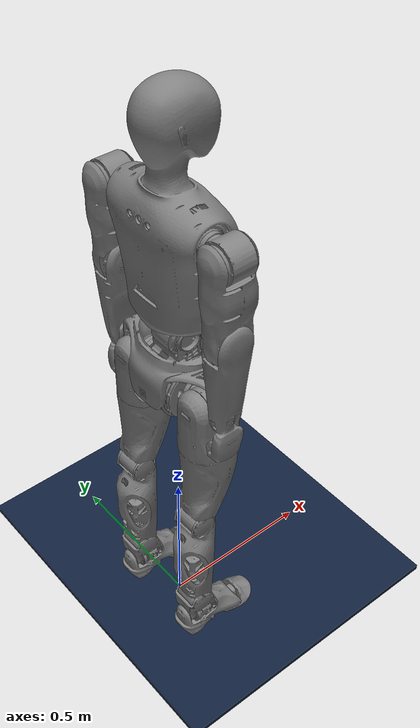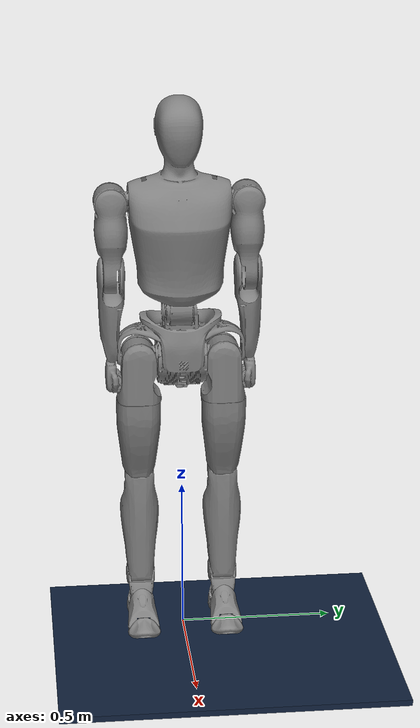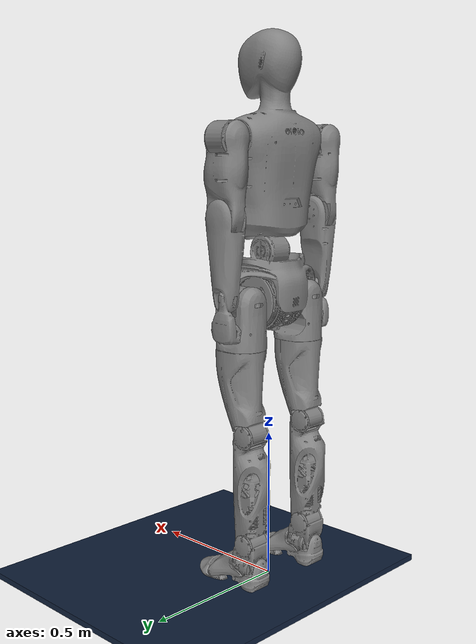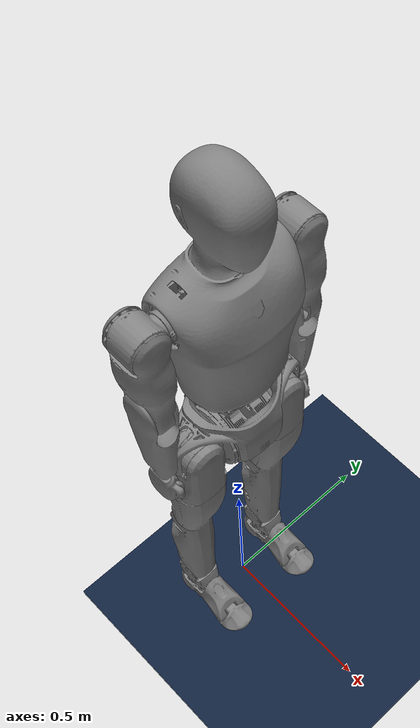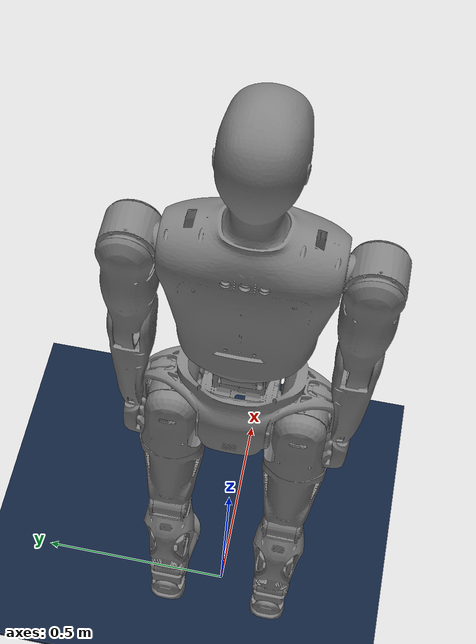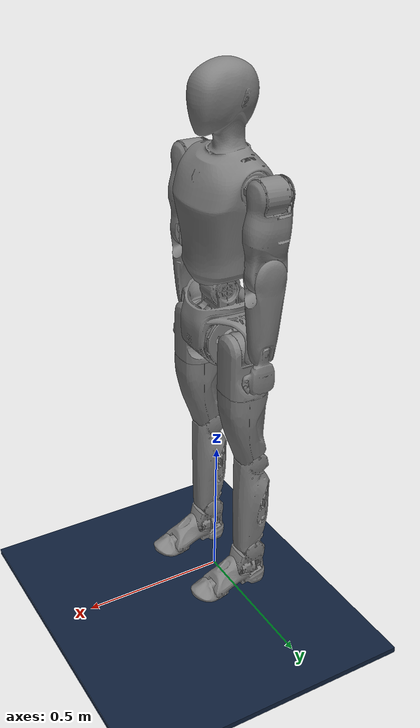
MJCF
<!-- Description:
sp xml: 脚部含有弹簧，且碰撞体分为两段：前后两个脚掌
-->
<mujoco model="InRealV2">
  <compiler angle="radian" meshdir="../mesh/"/>

  <asset>
    <mesh name="R" content_type="model/stl" file="R.stl"/>
    <mesh name="L1" content_type="model/stl" file="L1.stl"/>
    <mesh name="L11" content_type="model/stl" file="L1.stl" scale="1 -1 1"/>
    <mesh name="L2" content_type="model/stl" file="L2.stl"/>
    <mesh name="L21" content_type="model/stl" file="L2.stl" scale="1 -1 1"/>
    <mesh name="L3" content_type="model/stl" file="L3.stl"/>
    <mesh name="L31" content_type="model/stl" file="L3.stl" scale="1 -1 1"/>
    <mesh name="L4" content_type="model/stl" file="L4.stl"/>
    <mesh name="L41" content_type="model/stl" file="L4.stl" scale="1 -1 1"/>
    <mesh name="L5" content_type="model/stl" file="L5.stl"/>
    <mesh name="L51" content_type="model/stl" file="L5.stl" scale="1 -1 1"/>
    <mesh name="L6" content_type="model/stl" file="L6.stl"/>
    <mesh name="L7" content_type="model/stl" file="L7.stl"/>
    <mesh name="L61" content_type="model/stl" file="L6.stl" scale="1 -1 1"/>
    <mesh name="L71" content_type="model/stl" file="L7.stl" scale="1 -1 1"/>
    <mesh name="W" content_type="model/stl" file="W.stl"/>
    <mesh name="C" content_type="model/stl" file="C.stl"/>
    <mesh name="A1" content_type="model/stl" file="A1.stl"/>
    <mesh name="A11" content_type="model/stl" file="A1.stl" scale="1 -1 1"/>
    <mesh name="A2" content_type="model/stl" file="A2.stl"/>
    <mesh name="A21" content_type="model/stl" file="A2.stl" scale="1 -1 1"/>
    <mesh name="A3" content_type="model/stl" file="A3.stl"/>
    <mesh name="A31" content_type="model/stl" file="A3.stl" scale="1 -1 1"/>
  </asset>

  <!-- setup scene -->
  <statistic center="0 0 1.0" extent="1.0"/>
  <visual>
    <headlight diffuse="0.6 0.6 0.6" ambient="0.4 0.4 0.4" specular="0.1 0.1 0.1"/>
    <rgba haze="0.06 0.1 0.16 1"/>
    <global offwidth="2080" offheight="1170"/>
  </visual>
  <asset>
    <texture type="skybox" builtin="gradient"
      rgb1="0.18 0.28 0.40" rgb2="0.02 0.04 0.10"
      width="512" height="512"/>
    <texture type="2d" name="groundplane" builtin="checker" mark="edge"
      rgb1="0.09 0.19 0.31" rgb2="0.03 0.06 0.15"
      markrgb="0.45 0.65 0.90" width="512" height="512"/>
    <material name="groundplane" texture="groundplane" texuniform="true"
      texrepeat="5 5" reflectance="0.25"/>
  </asset>

  <worldbody>
    <geom name="floor" size="100 100 0.01" type="box" material="groundplane" contype="1" conaffinity="1" priority="1"
      friction="1.0 0.001 0.001" condim="3" solimp="0.9 0.95 0.01" solref="0.02 0.9"/>
    <light name="main" directional="true" diffuse="0.6 0.6 0.6" specular="0.1 0.1 0.1"
      pos="0 0 10" dir="0.2 0.3 -1" castshadow="true"/>
    <light name="fill" directional="true" diffuse="0.25 0.25 0.3" specular="0.0 0.0 0.0"
      pos="0 0 5" dir="-0.2 -0.3 -1" castshadow="false"/>
    <body name="pelvis" pos="0 0 1.12">
      <!-- pelvis ← entity1.r: mass 10.983→11.555, CoM z -0.146→-0.145 -->
      <inertial pos="0 0 -0.145" mass="11.555" fullinertia="0.083 0.0726 0.071 0 0.000249 0"/>
      <joint name="floating_base_joint" type="free"/>
      <geom type="mesh" contype="0" conaffinity="0" group="1" density="0" mesh="R"/>
      <geom size="0.05 0.175 0.05" pos="0 0 -0.035" type="box" group="3"/>

      <!-- left leg -->
      <!-- hip_pitch_link ← entity1.l1: body y 0.1407→0.14, mass 2.425→2.432 -->
      <body name="left_hip_pitch_link" pos="0 0.14 -0.159">
        <inertial pos="0 0 0" mass="2.432" fullinertia="0.0039 0.0029 0.0032 0 0 0"/>
        <joint name="left_hip_pitch_joint" pos="0 0 0" axis="0 1 0" range="-1.57 1.57" damping="0.05" frictionloss="5" solreffriction="0.0001 2" actuatorfrcrange="-587 587"/>
        <geom type="mesh" contype="0" conaffinity="0" group="1" density="0" mesh="L1"/>
        <geom size="0.055 0.035" quat="0.707035 0 0.707179 0" type="cylinder" group="3"/>
        <!-- hip_roll_link ← entity1.l2: mass 3.246→3.348, CoM pos updated -->
        <body name="left_hip_roll_link" pos="-0.01 0 0">
          <inertial pos="0.0014 0 -0.135" mass="3.348" fullinertia="0.0123 0.0136 0.00678 0 -0.000658 0"/>
          <joint name="left_hip_roll_joint" pos="0 0 0" axis="1 0 0" range="-0.35 1.57" damping="0.05" actuatorfrcrange="-336 336"/>
          <geom type="mesh" contype="0" conaffinity="0" group="1" density="0" mesh="L2"/>
          <geom size="0.05 0.04" pos="0 0 -0.1" type="cylinder" group="3"/>
          <!-- hip_yaw_link ← entity1.l3: body z -0.2051→-0.20534, mass unchanged, inertia updated -->
          <body name="left_hip_yaw_link" pos="0 0 -0.20534">
            <inertial pos="-0.018 -0.001 -0.126" mass="4.39" fullinertia="0.022 0.0227 0.0069 -0.000147 -0.003543 -0.000577"/>
            <joint name="left_hip_yaw_joint" pos="0 0 0" axis="0 0 1" range="-0.785 0.785" damping="0.05" actuatorfrcrange="-336 336"/>
            <geom type="mesh" contype="0" conaffinity="0" group="1" density="0" mesh="L3"/>
            <geom size="0.07 0.075" pos="0 0 -0.05" type="cylinder" group="3"/>
            <!-- knee_link ← entity1.l4: body z -0.2226→-0.2227, mass 4.497→4.765, range -0.26~2.2→0~2.44 -->
            <body name="left_knee_link" pos="-0.043 0 -0.2227">
              <inertial pos="0.002 -0.001 -0.247" mass="4.765" fullinertia="0.04785 0.0477 0.00586 -0.00001 -0.00144 -0.00095"/>
              <joint name="left_knee_joint" pos="0 0 0" axis="0 1 0" range="0 2.44" damping="0.05" frictionloss="30" solreffriction="0.0001 2" actuatorfrcrange="-338 338"/>
              <geom type="mesh" contype="0" conaffinity="0" group="1" density="0" mesh="L4"/>
              <geom size="0.05 0.125" pos="0 0 -0.15" type="cylinder" group="3"/>
              <!-- ankle_pitch_link ← entity1.l5: mass 0.954→1.108, range -0.6~0.75→-0.55~0.73 -->
              <body name="left_ankle_pitch_link" pos="0 0 -0.37">
                <inertial pos="0.011 0.0019 -0.0567" mass="1.108" fullinertia="0.00206 0.0023 0.0016 0.000024 0.000276 -0.000112"/>
                <joint name="left_ankle_pitch_joint" pos="0 0 0" axis="0 1 0" range="-0.55 0.73" damping="0.05" frictionloss="30" solreffriction="0.0001 2" actuatorfrcrange="-338 338"/>
                <geom type="mesh" contype="0" conaffinity="0" group="1" density="0" mesh="L5"/>
                <geom size="0.05 0.05" quat="0.707035 0.707179 0 0" type="cylinder" group="3"/>
                <!-- ankle_roll_link ← entity1.l6 -->
                <body name="left_ankle_roll_link" pos="0.014 0 -0.085">
                  <site name="left_foot" rgba="1 0 0 1" pos="0.04 0 -0.06"/>
                  <inertial pos="0.028 0 -0.027" mass="0.803" fullinertia="0.001 0.00354 0.00364 0 0.00002 0"/>
                  <joint name="left_ankle_roll_joint" pos="0 0 0" axis="1 0 0" range="-0.523 0.523" damping="0.05" actuatorfrcrange="-38 38"/>
                  <geom type="mesh" contype="0" conaffinity="0" group="1" density="0" mesh="L6"/>
                  <!-- 踝部碰撞体 -->
                  <geom size="0.05 0.05 0.035" pos="0 0 -0.01" type="box" group="3"/>
                  <geom size="0.015 0.04" pos="0.027 0 0.05" euler="1.57 0 0" type="cylinder" group="3"/>
                  <!-- 脚跟碰撞体（留在 l6，x≈-0.036） -->
                  <geom name="left_foot3_collision" size="0.01 0.03" pos="-0.036 0 -0.056" quat="0.707035 0 0.707179 0" type="cylinder" group="3"/>
                  <geom name="left_foot4_collision" size="0.01 0.03" pos="-0.036 0.018 -0.056" quat="0.707035 0 0.707179 0" type="cylinder" group="3"/>
                  <geom name="left_foot5_collision" size="0.01 0.025" pos="-0.036 0.036 -0.056" quat="0.707035 0 0.707179 0" type="cylinder" group="3"/>
                  <geom name="left_foot6_collision" size="0.01 0.03" pos="-0.036 -0.018 -0.056" quat="0.707035 0 0.707179 0" type="cylinder" group="3"/>
                  <geom name="left_foot7_collision" size="0.01 0.025" pos="-0.036 -0.036 -0.056" quat="0.707035 0 0.707179 0" type="cylinder" group="3"/>
                  <geom size="0.010 0.035" pos="0.085  0.04  -0.035" euler=" 0.25 -1.2  0" type="cylinder" group="3"/>
                  <geom size="0.010 0.05"  pos="0.09   0.035 -0.015" euler=" 0.25 -1.0  0" type="cylinder" group="3"/>
                  <geom size="0.010 0.05"  pos="0.09   0.025  0.003" euler=" 0.2  -0.95 0" type="cylinder" group="3"/>
                  <geom size="0.010 0.055" pos="0.09   0.01   0.010" euler=" 0    -1.0  0" type="cylinder" group="3"/>
                  <geom size="0.010 0.055" pos="0.09  -0.01   0.010" euler=" 0    -1.0  0" type="cylinder" group="3"/>
                  <geom size="0.010 0.05"  pos="0.09  -0.025  0.003" euler="-0.2  -0.95 0" type="cylinder" group="3"/>
                  <geom size="0.010 0.05"  pos="0.09  -0.034 -0.015" euler="-0.25 -1.0  0" type="cylinder" group="3"/>
                  <geom size="0.010 0.035" pos="0.085 -0.04  -0.035" euler="-0.25 -1.2  0" type="cylinder" group="3"/>
                  <!-- toe_link ← entity1.l7：弹簧脚趾体，原点在 l6 系 [0.131, 0, -0.046] -->
                  <body name="left_toe_link" pos="0.131 0 -0.046">
                    <inertial pos="0.0069 0 -0.0048" mass="0.51" fullinertia="0.000392 0.000448 0.000703 0 -0.000011 0"/>
                    <joint name="left_toe_spring_joint" axis="0 1 0" damping="0.05" stiffness="72.24" range="-0.6 0.0" limited="true" solreflimit="0.002 0.1"/>
                    <geom type="mesh" contype="0" conaffinity="0" group="1" density="0" mesh="L7" pos="0 0 -0.001"/>
                    <!-- 脚趾底部碰撞体 -->
                    <geom name="left_foot8_collision"  size="0.01 0.055" pos="0.009  0     -0.0104" quat="0.707035 0 0.707179 0" type="cylinder" group="3"/>
                    <geom name="left_foot9_collision"  size="0.01 0.055" pos="0.009  0.02  -0.0104" quat="0.707035 0 0.707179 0" type="cylinder" group="3"/>
                    <geom name="left_foot10_collision" size="0.01 0.05"  pos="0.004  0.04  -0.0104" quat="0.707035 0 0.707179 0" type="cylinder" group="3"/>
                    <geom name="left_foot11_collision" size="0.01 0.055" pos="0.009 -0.02  -0.0104" quat="0.707035 0 0.707179 0" type="cylinder" group="3"/>
                    <geom name="left_foot12_collision" size="0.01 0.05"  pos="0.004 -0.04  -0.0104" quat="0.707035 0 0.707179 0" type="cylinder" group="3"/>
                    <!-- 鞋面碰撞体 -->
                    <geom size="0.008 0.02"  pos="0.037  0.038  0.000" euler=" 0.1 -1.16 0" type="cylinder" group="3"/>
                    <geom size="0.010 0.025" pos="0.04   0.026  0.008" euler=" 0   -1.16 0" type="cylinder" group="3"/>
                    <geom size="0.010 0.03"  pos="0.045  0.01   0.015" euler=" 0   -1.16 0" type="cylinder" group="3"/>
                    <geom size="0.010 0.03"  pos="0.045 -0.01   0.015" euler=" 0   -1.16 0" type="cylinder" group="3"/>
                    <geom size="0.010 0.025" pos="0.04  -0.026  0.008" euler=" 0   -1.16 0" type="cylinder" group="3"/>
                    <geom size="0.008 0.02"  pos="0.037 -0.038  0.000" euler="-0.1 -1.16 0" type="cylinder" group="3"/>
                  </body>
                </body>
              </body>
            </body>
          </body>
        </body>
      </body>

      <!-- right leg -->
      <!-- hip_pitch_link ← entity1.l1m: body y -0.1417→-0.14, mass 2.425→2.432 -->
      <body name="right_hip_pitch_link" pos="0 -0.14 -0.159">
        <inertial pos="0 0 0" mass="2.432" fullinertia="0.0039 0.0029 0.0032 0 0 0"/>
        <joint name="right_hip_pitch_joint" pos="0 0 0" axis="0 1 0" range="-1.57 1.57" damping="0.05" frictionloss="5" solreffriction="0.0001 2" actuatorfrcrange="-587 587"/>
        <geom type="mesh" contype="0" conaffinity="0" group="1" density="0" mesh="L11"/>
        <geom size="0.055 0.035" quat="0.707035 0 0.707179 0" type="cylinder" group="3"/>
        <!-- hip_roll_link ← entity1.l2m: mass 3.246→3.348, CoM pos updated -->
        <body name="right_hip_roll_link" pos="-0.01 0 0">
          <inertial pos="0.0014 0 -0.135" mass="3.348" fullinertia="0.0123 0.0136 0.00678 0 -0.000658 0"/>
          <joint name="right_hip_roll_joint" pos="0 0 0" axis="1 0 0" range="-1.57 0.35" damping="0.05" actuatorfrcrange="-336 336"/>
          <geom type="mesh" contype="0" conaffinity="0" group="1" density="0" mesh="L21"/>
          <geom size="0.05 0.04" pos="0 0 -0.1" type="cylinder" group="3"/>
          <!-- hip_yaw_link ← entity1.l3m: body z -0.2051→-0.20534, inertia updated (Ixy,Iyz signs flipped) -->
          <body name="right_hip_yaw_link" pos="0 0 -0.20534">
            <inertial pos="-0.018 0.001 -0.126" mass="4.39" fullinertia="0.022 0.0227 0.0069 0.000147 -0.003543 0.000577"/>
            <joint name="right_hip_yaw_joint" pos="0 0 0" axis="0 0 1" range="-0.785 0.785" damping="0.05" actuatorfrcrange="-336 336"/>
            <geom type="mesh" contype="0" conaffinity="0" group="1" density="0" mesh="L31"/>
            <geom size="0.07 0.075" pos="0 0 -0.05" type="cylinder" group="3"/>
            <!-- knee_link ← entity1.l4m: body z -0.2226→-0.2227, mass 4.497→4.765, range -0.26~2.2→0~2.44 -->
            <body name="right_knee_link" pos="-0.043 0 -0.2227">
              <inertial pos="0.002 0.001 -0.247" mass="4.765" fullinertia="0.04785 0.0477 0.00586 0.00001 -0.00144 0.00095"/>
              <joint name="right_knee_joint" pos="0 0 0" axis="0 1 0" range="0 2.44" damping="0.05" frictionloss="30" solreffriction="0.0001 2" actuatorfrcrange="-338 338"/>
              <geom type="mesh" contype="0" conaffinity="0" group="1" density="0" mesh="L41"/>
              <geom size="0.05 0.125" pos="0 0 -0.15" type="cylinder" group="3"/>
              <!-- ankle_pitch_link ← entity1.l5m: mass 0.954→1.108, range -0.6~0.75→-0.55~0.73 -->
              <body name="right_ankle_pitch_link" pos="0 0 -0.37">
                <inertial pos="0.011 -0.0019 -0.0567" mass="1.108" fullinertia="0.00206 0.0023 0.0016 -0.000024 0.000276 0.000112"/>
                <joint name="right_ankle_pitch_joint" pos="0 0 0" axis="0 1 0" range="-0.55 0.73" damping="0.05" frictionloss="30" solreffriction="0.0001 2" actuatorfrcrange="-338 338"/>
                <geom type="mesh" contype="0" conaffinity="0" group="1" density="0" mesh="L51"/>
                <geom size="0.05 0.05" quat="0.707035 0.707179 0 0" type="cylinder" group="3"/>
                <!-- ankle_roll_link ← entity1.l6m -->
                <body name="right_ankle_roll_link" pos="0.014 0 -0.085">
                  <site name="right_foot" rgba="1 0 0 1" pos="0.04 0 -0.06"/>
                  <inertial pos="0.028 0 -0.027" mass="0.803" fullinertia="0.001 0.00354 0.00364 0 0.00002 0"/>
                  <joint name="right_ankle_roll_joint" pos="0 0 0" axis="1 0 0" range="-0.523 0.523" damping="0.05" actuatorfrcrange="-38 38"/>
                  <geom type="mesh" contype="0" conaffinity="0" group="1" density="0" mesh="L61"/>
                  <!-- 踝部碰撞体 -->
                  <geom size="0.05 0.05 0.035" pos="0 0 -0.01" type="box" group="3"/>
                  <geom size="0.015 0.04" pos="0.027 0 0.05" euler="1.57 0 0" type="cylinder" group="3"/>
                  <!-- 脚跟碰撞体（留在 l6，x≈-0.036） -->
                  <geom name="right_foot3_collision" size="0.01 0.03" pos="-0.036 0 -0.056" quat="0.707035 0 0.707179 0" type="cylinder" group="3"/>
                  <geom name="right_foot4_collision" size="0.01 0.03" pos="-0.036 0.018 -0.056" quat="0.707035 0 0.707179 0" type="cylinder" group="3"/>
                  <geom name="right_foot5_collision" size="0.01 0.025" pos="-0.036 0.036 -0.056" quat="0.707035 0 0.707179 0" type="cylinder" group="3"/>
                  <geom name="right_foot6_collision" size="0.01 0.03" pos="-0.036 -0.018 -0.056" quat="0.707035 0 0.707179 0" type="cylinder" group="3"/>
                  <geom name="right_foot7_collision" size="0.01 0.025" pos="-0.036 -0.036 -0.056" quat="0.707035 0 0.707179 0" type="cylinder" group="3"/>
                  <geom size="0.010 0.035" pos="0.085 0.04 -0.035" euler="0.25 -1.2 0" type="cylinder" group="3"/>
                  <geom size="0.010 0.05" pos="0.09 0.035 -0.015" euler="0.25 -1.0 0" type="cylinder" group="3"/>
                  <geom size="0.010 0.05" pos="0.09 0.025 0.003" euler="0.2 -0.95 0" type="cylinder" group="3"/>
                  <geom size="0.010 0.055" pos="0.09 0.01 0.010" euler="0 -1.0 0" type="cylinder" group="3"/>
                  <geom size="0.010 0.055" pos="0.09 -0.01 0.010" euler="0 -1.0 0" type="cylinder" group="3"/>
                  <geom size="0.010 0.05" pos="0.09 -0.025 0.003" euler="-0.2 -0.95 0" type="cylinder" group="3"/>
                  <geom size="0.010 0.05" pos="0.09 -0.034 -0.015" euler="-0.25 -1.0 0" type="cylinder" group="3"/>
                  <geom size="0.010 0.035" pos="0.085 -0.04 -0.035" euler="-0.25 -1.2 0" type="cylinder" group="3"/>
                  <!-- toe_link ← entity1.l7m：弹簧脚趾体，原点在 l6 系 [0.131, 0, -0.046] -->
                  <body name="right_toe_link" pos="0.131 0 -0.046">
                    <inertial pos="0.0069 0 -0.0048" mass="0.51" fullinertia="0.000392 0.000448 0.000703 0 -0.000011 0"/>
                    <joint name="right_toe_spring_joint" axis="0 1 0" damping="0.05" stiffness="72.24" range="-0.6 0.0" limited="true" solreflimit="0.002 0.1"/>
                    <geom type="mesh" contype="0" conaffinity="0" group="1" density="0" mesh="L71" pos="0 0 -0.001"/>
                    <!-- 脚趾底部碰撞体（从 l6 系转换：x=0.14-0.131=0.009, z=-0.0564-(-0.046)=-0.0104） -->
                    <geom name="right_foot8_collision"  size="0.01 0.055" pos="0.009 0     -0.0104" quat="0.707035 0 0.707179 0" type="cylinder" group="3"/>
                    <geom name="right_foot9_collision"  size="0.01 0.055" pos="0.009 0.02  -0.0104" quat="0.707035 0 0.707179 0" type="cylinder" group="3"/>
                    <geom name="right_foot10_collision" size="0.01 0.05" pos="0.004 0.04  -0.0104" quat="0.707035 0 0.707179 0" type="cylinder" group="3"/>
                    <geom name="right_foot11_collision" size="0.01 0.055" pos="0.009 -0.02 -0.0104" quat="0.707035 0 0.707179 0" type="cylinder" group="3"/>
                    <geom name="right_foot12_collision" size="0.01 0.05" pos="0.004 -0.04 -0.0104" quat="0.707035 0 0.707179 0" type="cylinder" group="3"/>
                    <!-- 鞋面碰撞体（从 l6 系转换：pos_l7 = pos_l6 - [0.131, 0, -0.046]） -->
                    <geom size="0.008 0.02" pos="0.037 0.038 0.000" euler="0.1 -1.16 0" type="cylinder" group="3"/>
                    <geom size="0.010 0.025" pos="0.04 0.026 0.008" euler="0 -1.16 0" type="cylinder" group="3"/>
                    <geom size="0.010 0.03" pos="0.045 0.01 0.015" euler="0 -1.16 0" type="cylinder" group="3"/>
                    <geom size="0.010 0.03" pos="0.045 -0.01 0.015" euler="0 -1.16 0" type="cylinder" group="3"/>
                    <geom size="0.010 0.025" pos="0.04 -0.026 0.008" euler="0 -1.16 0" type="cylinder" group="3"/>
                    <geom size="0.008 0.02" pos="0.037 -0.038 0.000" euler="-0.1 -1.16 0" type="cylinder" group="3"/>
                  </body>
                </body>
              </body>
            </body>
          </body>
        </body>
      </body>

      <!-- waist -->
      <!-- waist_pitch_link ← entity1.w: mass 4.139→2.441, CoM z 0.042→0.0035, range -1.2~1.2→-1.57~1.57 -->
      <body name="waist_pitch_link">
        <inertial pos="0 0 0.0035" mass="2.441" fullinertia="0.0033 0.0041 0.0028 0 0 0"/>
        <joint name="waist_pitch_joint" pos="0 0 0" axis="0 1 0" range="-1.57 1.57" damping="0.05" actuatorfrcrange="-336 336"/>
        <geom type="mesh" contype="0" conaffinity="0" group="1" density="0" mesh="W"/>
        <!-- torso_link ← entity1.ch: body z 0.3515→0.356, mass 14.292+battery→21.125, battery body removed -->
        <body name="torso_link" pos="-0.018 0 0.356">
          <site name="IMU" pos="0 0 0" size="0.01" quat="1 0 0 0"/>
          <inertial pos="0.013 0 -0.062" mass="21.125" fullinertia="0.505 0.412 0.182 0 0.01 0"/>
          <joint name="waist_yaw_joint" pos="0 0 0" axis="0 0 1" range="-3.14 3.14" damping="0.05" actuatorfrcrange="-336 336"/>
          <geom type="mesh" contype="0" conaffinity="0" group="1" density="0" mesh="C"/>
          <geom size="0.05 0.15 0.25" type="box" group="3"/>

          <!-- left arm -->
          <!-- shoulder_pitch_link ← entity1.a1: body y 0.2207→0.2205, mass 2.451→2.463, range -3.14~1.57→-3.14~3.14 -->
          <body name="left_shoulder_pitch_link" pos="0 0.2205 0">
            <inertial pos="0 -0.004 0" mass="2.463" fullinertia="0.004255 0.002852 0.003353 0 0 0"/>
            <joint name="left_shoulder_pitch_joint" pos="0 0 0" axis="0 1 0" range="-3.14 3.14" damping="0.05" actuatorfrcrange="-336 336"/>
            <geom type="mesh" contype="0" conaffinity="0" group="1" density="0" mesh="A1"/>
            <geom size="0.04 0.035" pos="0 0.01 0" quat="0.707035 0 0.707179 0" type="cylinder" group="3"/>
            <!-- shoulder_roll_link ← entity1.a2: mass 2.526→2.585, CoM updated -->
            <body name="left_shoulder_roll_link">
              <inertial pos="0 -0.0023 -0.181" mass="2.585" fullinertia="0.019 0.0215 0.0053 0 -0.00003 -0.000328"/>
              <joint name="left_shoulder_roll_joint" pos="0 0 0" axis="1 0 0" range="-0.13 1.57" damping="0.05" actuatorfrcrange="-336 336"/>
              <geom type="mesh" contype="0" conaffinity="0" group="1" density="0" mesh="A2"/>
              <geom size="0.05 0.1" pos="0 0.02 -0.15" type="cylinder" group="3"/>
              <!-- elbow_link ← entity1.a3: mass 1.679→3.534, range -1.76~0→-1.9~0 -->
              <body name="left_elbow_link" pos="0 0 -0.2385">
                <inertial pos="-0.0014 0.00597 -0.134" quat="0.708788 -0.00427982 -0.0143089 0.705263" mass="1.679" diaginertia="0.0127601 0.0120067 0.00227817"/>
                <joint name="left_elbow_joint" pos="0 0 0" axis="0 1 0" range="-1.76 0" actuatorfrcrange="-136 136"/>
                <geom type="mesh" contype="0" conaffinity="0" group="1" density="0" mesh="A3"/>
                <geom size="0.02 0.09" pos="0 0.03 -0.15" type="cylinder" group="3"/>
              </body>
            </body>
          </body>

          <!-- right arm -->
          <!-- shoulder_pitch_link ← entity1.a1m: body y -0.2207→-0.2205, mass 2.451→2.463, range -3.14~1.57→-3.14~3.14 -->
          <body name="right_shoulder_pitch_link" pos="0 -0.2205 0">
            <inertial pos="0 0.0036 0" mass="2.463" fullinertia="0.004255 0.002852 0.003353 0 0 0"/>
            <joint name="right_shoulder_pitch_joint" pos="0 0 0" axis="0 1 0" range="-3.14 3.14" damping="0.05" actuatorfrcrange="-336 336"/>
            <geom type="mesh" contype="0" conaffinity="0" group="1" density="0" mesh="A11"/>
            <geom size="0.04 0.035" pos="0 -0.01 0" quat="0.707035 0 0.707179 0" type="cylinder" group="3"/>
            <!-- shoulder_roll_link ← entity1.a2m: mass 2.526→2.585, CoM updated (Iyz sign flipped) -->
            <body name="right_shoulder_roll_link">
              <inertial pos="0 0.0023 -0.181" mass="2.585" fullinertia="0.019 0.0215 0.0053 0 -0.00003 0.000328"/>
              <joint name="right_shoulder_roll_joint" pos="0 0 0" axis="1 0 0" range="-1.57 0.13" damping="0.05" actuatorfrcrange="-336 336"/>
              <geom type="mesh" contype="0" conaffinity="0" group="1" density="0" mesh="A21"/>
              <geom size="0.05 0.1" pos="0 -0.02 -0.15" type="cylinder" group="3"/>
              <!-- elbow_link ← entity1.a3m: mass 1.679→3.534, range -1.76~0→-1.9~0 (Ixy,Iyz signs flipped) -->
              <body name="right_elbow_link" pos="0 0 -0.2385">
                <inertial pos="-0.0014 -0.00597 -0.134" quat="0.705263 -0.0143089 -0.00427982 0.708788" mass="1.679" diaginertia="0.0127601 0.0120067 0.00227817"/>
                <joint name="right_elbow_joint" pos="0 0 0" axis="0 1 0" range="-1.76 0" actuatorfrcrange="-136 136"/>
                <geom type="mesh" contype="0" conaffinity="0" group="1" density="0" mesh="A31"/>
                <geom size="0.02 0.09" pos="0 -0.03 -0.15" type="cylinder" group="3"/>
              </body>
            </body>
          </body>

        </body>
      </body>
    </body>
  </worldbody>

  <sensor>
    <accelerometer name="BodyAcc" site="IMU" noise="0.1"/>
    <gyro name="BodyGyro" site="IMU" noise="0.001"/>
    <subtreeangmom name="root_angmom" body="torso_link"/>
  </sensor>
</mujoco>
